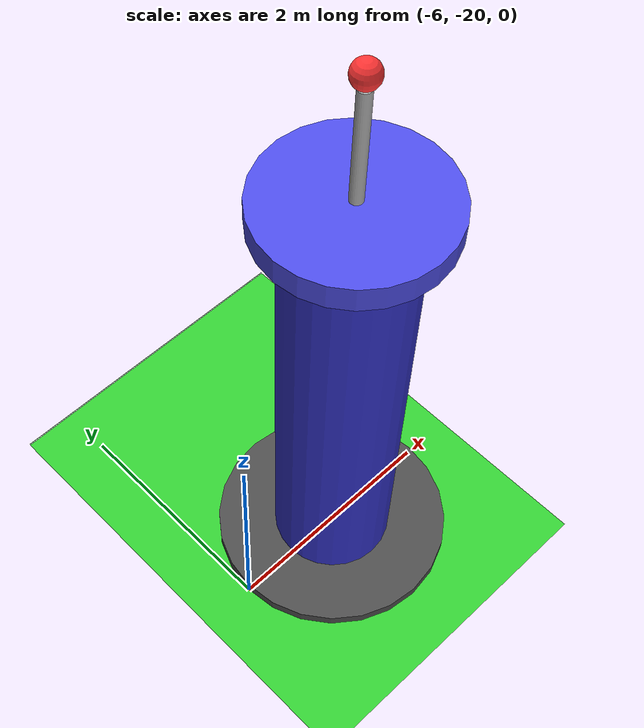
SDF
<?xml version="1.0" ?>
<sdf version="1.6">
  <world name="default">

    <!-- A global light source -->
    <include>
      <uri>model://sun</uri>
    </include>

    <!-- Ground plane with green grass -->
    <include>
      <uri>model://ground_plane</uri>
    </include>

    <!-- Physics settings -->
    <physics type="ode">
      <max_step_size>0.001</max_step_size>
      <real_time_factor>1</real_time_factor>
      <real_time_update_rate>1000</real_time_update_rate>
      <gravity>0 0 -9.8</gravity>
    </physics>

    <!-- Green field base (expanded) -->
    <model name="green_field">
      <static>true</static>
      <link name="link">
        <collision name="collision">
          <geometry>
            <plane>
              <normal>0 0 1</normal>
              <size>70 70</size>
            </plane>
          </geometry>
          <surface>
            <friction>
              <ode>
                <mu>100</mu>
                <mu2>50</mu2>
              </ode>
            </friction>
          </surface>
        </collision>
        <visual name="visual">
          <geometry>
            <plane>
              <normal>0 0 1</normal>
              <size>70 70</size>
            </plane>
          </geometry>
          <material>
            <ambient>0.2 0.6 0.2 1</ambient>
            <diffuse>0.2 0.8 0.2 1</diffuse>
            <specular>0.1 0.1 0.1 1</specular>
          </material>
        </visual>
      </link>
    </model>

    <!-- Scattered circular farmland areas (less regular layout) -->

    <model name="unified_workspace">
      <static>true</static>
      <pose>0.0 0.0 0.01 0 0 0</pose>
      <link name="link">
        <visual name="visual">
          <geometry>
            <box>
              <size>21.5 21.5 0.01</size>
            </box>
          </geometry>
          <material>
            <ambient>0.3 0.8 0.3 0.7</ambient>
            <diffuse>0.4 0.9 0.4 0.7</diffuse>
          </material>
        </visual>
      </link>
    </model>

    <!-- Central Command Tower - Outside farmland area -->
    <include>
      <uri>model://central_tower</uri>
      <name>central_tower</name>
      <pose>-5 -20 0 0 0 0</pose>
    </include>

  </world>
</sdf>

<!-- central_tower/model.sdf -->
<sdf version="1.6">
  <model name="central_tower">

    <!-- Static model - won't be affected by physics -->
    <static>true</static>

    <link name="tower_link">
      <!-- Pose: centered at base, tower extends upward -->
      <pose>0 0 2.0 0 0 0</pose>

      <!-- Main Tower Body -->
      <visual name="tower_body_visual">
        <geometry>
          <cylinder>
            <radius>0.5</radius>
            <length>4.0</length>
          </cylinder>
        </geometry>
        <material>
          <ambient>0.1 0.1 0.6 1</ambient>
          <diffuse>0.2 0.2 0.8 1</diffuse>
          <specular>0.5 0.5 0.5 1</specular>
        </material>
      </visual>

      <collision name="tower_body_collision">
        <geometry>
          <cylinder>
            <radius>0.5</radius>
            <length>4.0</length>
          </cylinder>
        </geometry>
      </collision>
    </link>

    <!-- Tower Top / Antenna Platform -->
    <link name="tower_top_link">
      <pose>0 0 4.1 0 0 0</pose>

      <visual name="tower_top_visual">
        <geometry>
          <cylinder>
            <radius>0.7</radius>
            <length>0.2</length>
          </cylinder>
        </geometry>
        <material>
          <ambient>0.15 0.15 0.7 1</ambient>
          <diffuse>0.3 0.3 0.9 1</diffuse>
          <specular>0.6 0.6 0.6 1</specular>
        </material>
      </visual>

      <collision name="tower_top_collision">
        <geometry>
          <cylinder>
            <radius>0.7</radius>
            <length>0.2</length>
          </cylinder>
        </geometry>
      </collision>
    </link>

    <!-- Antenna -->
    <link name="antenna_link">
      <pose>0 0 4.6 0 0 0</pose>

      <visual name="antenna_visual">
        <geometry>
          <cylinder>
            <radius>0.05</radius>
            <length>1.0</length>
          </cylinder>
        </geometry>
        <material>
          <ambient>0.5 0.5 0.5 1</ambient>
          <diffuse>0.7 0.7 0.7 1</diffuse>
          <specular>0.8 0.8 0.8 1</specular>
        </material>
      </visual>
    </link>

    <!-- Beacon Light on top -->
    <link name="beacon_link">
      <pose>0 0 5.2 0 0 0</pose>

      <visual name="beacon_visual">
        <geometry>
          <sphere>
            <radius>0.1</radius>
          </sphere>
        </geometry>
        <material>
          <ambient>0.9 0.1 0.1 1</ambient>
          <diffuse>1.0 0.2 0.2 1</diffuse>
          <specular>1.0 0.5 0.5 1</specular>
          <emissive>0.8 0.1 0.1 1</emissive>
        </material>
      </visual>
    </link>

    <!-- Base Platform -->
    <link name="base_link">
      <pose>0 0 0.05 0 0 0</pose>

      <visual name="base_visual">
        <geometry>
          <cylinder>
            <radius>1.0</radius>
            <length>0.1</length>
          </cylinder>
        </geometry>
        <material>
          <ambient>0.2 0.2 0.2 1</ambient>
          <diffuse>0.3 0.3 0.3 1</diffuse>
          <specular>0.4 0.4 0.4 1</specular>
        </material>
      </visual>

      <collision name="base_collision">
        <geometry>
          <cylinder>
            <radius>1.0</radius>
            <length>0.1</length>
          </cylinder>
        </geometry>
      </collision>
    </link>

    <!-- Fixed joints to connect all links -->
    <joint name="base_to_tower" type="fixed">
      <parent>base_link</parent>
      <child>tower_link</child>
    </joint>

    <joint name="tower_to_top" type="fixed">
      <parent>tower_link</parent>
      <child>tower_top_link</child>
    </joint>

    <joint name="top_to_antenna" type="fixed">
      <parent>tower_top_link</parent>
      <child>antenna_link</child>
    </joint>

    <joint name="antenna_to_beacon" type="fixed">
      <parent>antenna_link</parent>
      <child>beacon_link</child>
    </joint>

  </model>
</sdf>
